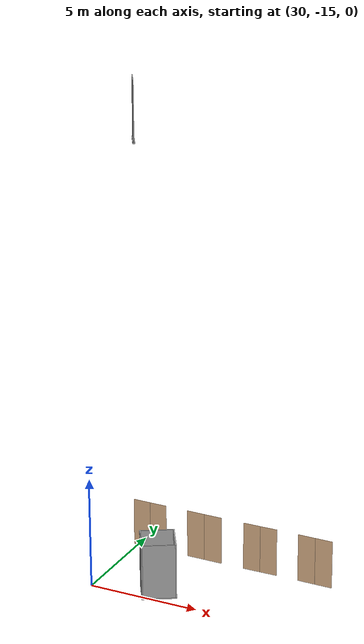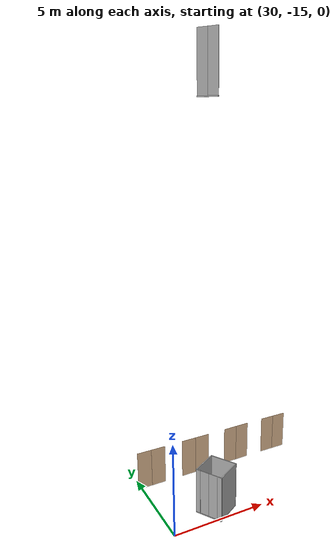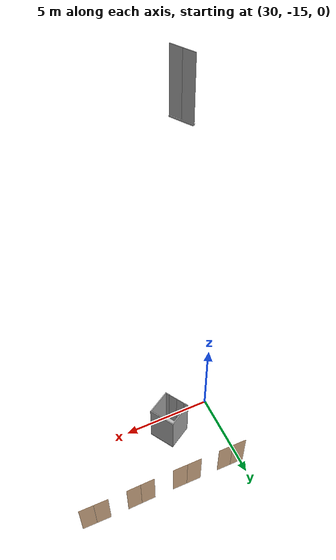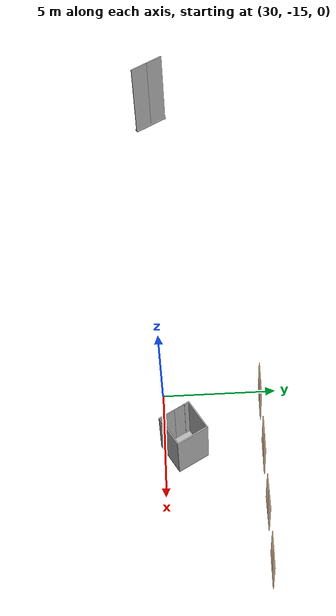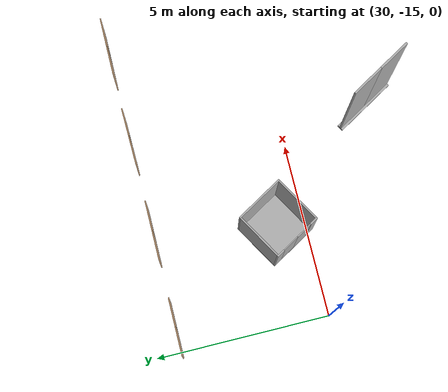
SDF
<sdf version="1.7">
 <world name="sim_world">
  <model name="part1_5">
   <pose>30.62381580076393 -10.732564106341501 0.0 0 0 3.1325331828849774</pose>
   <link name="right">
    <pose>0.4033982302911093 0 1.11 0 0 0</pose>
    <visual name="right_visual">
     <geometry><box><size>0.7967964605822186 0.03 2.2</size></box></geometry>
     <material>
      <ambient>0.5 0.25 0 0.6</ambient>
      <diffuse>0.5 0.25 0 0.6</diffuse>
      <pbr><metal><metalness>0.0</metalness></metal></pbr>
     </material>
    </visual>
    <collision name="right_collision">
     <geometry><box><size>0.7967964605822186 0.03 2.2</size></box></geometry>
     <surface><contact><collide_bitmask>0x02</collide_bitmask></contact></surface>
    </collision>
    <inertial>
     <mass>50.0</mass>
     <inertia><ixx>20.17041666666667</ixx><iyy>22.8120191649848</iyy><izz>2.64910249831813</izz></inertia>
    </inertial>
   </link>
   <joint name="right_joint" type="revolute">
    <parent>world</parent>
    <child>right</child>
    <axis><xyz>0 0 1</xyz><limit><lower>0</lower><upper>1.57</upper></limit></axis>
    <pose>0.4033982302911093 0 0 0 0 0</pose>
   </joint>
   <link name="left">
    <pose>-0.4033982302911093 0 1.11 0 0 0</pose>
    <visual name="left_visual">
     <geometry><box><size>0.7967964605822186 0.03 2.2</size></box></geometry>
     <material>
      <ambient>0.5 0.25 0 0.6</ambient>
      <diffuse>0.5 0.25 0 0.6</diffuse>
      <pbr><metal><metalness>0.0</metalness></metal></pbr>
     </material>
    </visual>
    <collision name="left_collision">
     <geometry><box><size>0.7967964605822186 0.03 2.2</size></box></geometry>
     <surface><contact><collide_bitmask>0x02</collide_bitmask></contact></surface>
    </collision>
    <inertial>
     <mass>50.0</mass>
     <inertia><ixx>20.17041666666667</ixx><iyy>22.8120191649848</iyy><izz>2.64910249831813</izz></inertia>
    </inertial>
   </link>
   <joint name="left_joint" type="revolute">
    <parent>world</parent>
    <child>left</child>
    <axis><xyz>0 0 1</xyz><limit><lower>-1.57</lower><upper>0</upper></limit></axis>
    <pose>-0.4033982302911093 0 0 0 0 0</pose>
   </joint>
   <plugin name="register_component" filename="libregister_component.so">
    <component name="Door">
     <v_max_door>0.5</v_max_door>
     <a_max_door>0.3</a_max_door>
     <a_nom_door>0.15</a_nom_door>
     <dx_min_door>0.01</dx_min_door>
     <f_max_door>500.0</f_max_door>
     <ros_interface>true</ros_interface>
     <door name="part1_5" type="DoubleSwingDoor" left_joint_name="left_joint" right_joint_name="right_joint"/>
    </component>
   </plugin>
  </model>
  <model name="part1_6">
   <pose>33.303837845168346 -10.745754091436014 0.0 0 0 3.134548012368475</pose>
   <link name="right">
    <pose>0.4174083984026789 0 1.11 0 0 0</pose>
    <visual name="right_visual">
     <geometry><box><size>0.8248167968053578 0.03 2.2</size></box></geometry>
     <material>
      <ambient>0.5 0.25 0 0.6</ambient>
      <diffuse>0.5 0.25 0 0.6</diffuse>
      <pbr><metal><metalness>0.0</metalness></metal></pbr>
     </material>
    </visual>
    <collision name="right_collision">
     <geometry><box><size>0.8248167968053578 0.03 2.2</size></box></geometry>
     <surface><contact><collide_bitmask>0x02</collide_bitmask></contact></surface>
    </collision>
    <inertial>
     <mass>50.0</mass>
     <inertia><ixx>20.17041666666667</ixx><iyy>23.001344784551048</iyy><izz>2.838428117884379</izz></inertia>
    </inertial>
   </link>
   <joint name="right_joint" type="revolute">
    <parent>world</parent>
    <child>right</child>
    <axis><xyz>0 0 1</xyz><limit><lower>0</lower><upper>1.57</upper></limit></axis>
    <pose>0.4174083984026789 0 0 0 0 0</pose>
   </joint>
   <link name="left">
    <pose>-0.4174083984026789 0 1.11 0 0 0</pose>
    <visual name="left_visual">
     <geometry><box><size>0.8248167968053578 0.03 2.2</size></box></geometry>
     <material>
      <ambient>0.5 0.25 0 0.6</ambient>
      <diffuse>0.5 0.25 0 0.6</diffuse>
      <pbr><metal><metalness>0.0</metalness></metal></pbr>
     </material>
    </visual>
    <collision name="left_collision">
     <geometry><box><size>0.8248167968053578 0.03 2.2</size></box></geometry>
     <surface><contact><collide_bitmask>0x02</collide_bitmask></contact></surface>
    </collision>
    <inertial>
     <mass>50.0</mass>
     <inertia><ixx>20.17041666666667</ixx><iyy>23.001344784551048</iyy><izz>2.838428117884379</izz></inertia>
    </inertial>
   </link>
   <joint name="left_joint" type="revolute">
    <parent>world</parent>
    <child>left</child>
    <axis><xyz>0 0 1</xyz><limit><lower>-1.57</lower><upper>0</upper></limit></axis>
    <pose>-0.4174083984026789 0 0 0 0 0</pose>
   </joint>
   <plugin name="register_component" filename="libregister_component.so">
    <component name="Door">
     <v_max_door>0.5</v_max_door>
     <a_max_door>0.3</a_max_door>
     <a_nom_door>0.15</a_nom_door>
     <dx_min_door>0.01</dx_min_door>
     <f_max_door>500.0</f_max_door>
     <ros_interface>true</ros_interface>
     <door name="part1_6" type="DoubleSwingDoor" left_joint_name="left_joint" right_joint_name="right_joint"/>
    </component>
   </plugin>
  </model>
  <model name="part1_7">
   <pose>35.98657169916032 -10.742288109951325 0.0 0 0 -3.1297649534100933</pose>
   <link name="right">
    <pose>0.3951374930538005 0 1.11 0 0 0</pose>
    <visual name="right_visual">
     <geometry><box><size>0.780274986107601 0.03 2.2</size></box></geometry>
     <material>
      <ambient>0.5 0.25 0 0.6</ambient>
      <diffuse>0.5 0.25 0 0.6</diffuse>
      <pbr><metal><metalness>0.0</metalness></metal></pbr>
     </material>
    </visual>
    <collision name="right_collision">
     <geometry><box><size>0.780274986107601 0.03 2.2</size></box></geometry>
     <surface><contact><collide_bitmask>0x02</collide_bitmask></contact></surface>
    </collision>
    <inertial>
     <mass>50.0</mass>
     <inertia><ixx>20.17041666666667</ixx><iyy>22.70345439143841</iyy><izz>2.540537724771738</izz></inertia>
    </inertial>
   </link>
   <joint name="right_joint" type="revolute">
    <parent>world</parent>
    <child>right</child>
    <axis><xyz>0 0 1</xyz><limit><lower>0</lower><upper>1.57</upper></limit></axis>
    <pose>0.3951374930538005 0 0 0 0 0</pose>
   </joint>
   <link name="left">
    <pose>-0.3951374930538005 0 1.11 0 0 0</pose>
    <visual name="left_visual">
     <geometry><box><size>0.780274986107601 0.03 2.2</size></box></geometry>
     <material>
      <ambient>0.5 0.25 0 0.6</ambient>
      <diffuse>0.5 0.25 0 0.6</diffuse>
      <pbr><metal><metalness>0.0</metalness></metal></pbr>
     </material>
    </visual>
    <collision name="left_collision">
     <geometry><box><size>0.780274986107601 0.03 2.2</size></box></geometry>
     <surface><contact><collide_bitmask>0x02</collide_bitmask></contact></surface>
    </collision>
    <inertial>
     <mass>50.0</mass>
     <inertia><ixx>20.17041666666667</ixx><iyy>22.70345439143841</iyy><izz>2.540537724771738</izz></inertia>
    </inertial>
   </link>
   <joint name="left_joint" type="revolute">
    <parent>world</parent>
    <child>left</child>
    <axis><xyz>0 0 1</xyz><limit><lower>-1.57</lower><upper>0</upper></limit></axis>
    <pose>-0.3951374930538005 0 0 0 0 0</pose>
   </joint>
   <plugin name="register_component" filename="libregister_component.so">
    <component name="Door">
     <v_max_door>0.5</v_max_door>
     <a_max_door>0.3</a_max_door>
     <a_nom_door>0.15</a_nom_door>
     <dx_min_door>0.01</dx_min_door>
     <f_max_door>500.0</f_max_door>
     <ros_interface>true</ros_interface>
     <door name="part1_7" type="DoubleSwingDoor" left_joint_name="left_joint" right_joint_name="right_joint"/>
    </component>
   </plugin>
  </model>
  <model name="part1_8">
   <pose>38.57675903364792 -10.742207878898437 0.0 0 0 3.1300311442483824</pose>
   <link name="right">
    <pose>0.40076484747594776 0 1.11 0 0 0</pose>
    <visual name="right_visual">
     <geometry><box><size>0.7915296949518955 0.03 2.2</size></box></geometry>
     <material>
      <ambient>0.5 0.25 0 0.6</ambient>
      <diffuse>0.5 0.25 0 0.6</diffuse>
      <pbr><metal><metalness>0.0</metalness></metal></pbr>
     </material>
    </visual>
    <collision name="right_collision">
     <geometry><box><size>0.7915296949518955 0.03 2.2</size></box></geometry>
     <surface><contact><collide_bitmask>0x02</collide_bitmask></contact></surface>
    </collision>
    <inertial>
     <mass>50.0</mass>
     <inertia><ixx>20.17041666666667</ixx><iyy>22.777163574961005</iyy><izz>2.6142469082943367</izz></inertia>
    </inertial>
   </link>
   <joint name="right_joint" type="revolute">
    <parent>world</parent>
    <child>right</child>
    <axis><xyz>0 0 1</xyz><limit><lower>0</lower><upper>1.57</upper></limit></axis>
    <pose>0.40076484747594776 0 0 0 0 0</pose>
   </joint>
   <link name="left">
    <pose>-0.40076484747594776 0 1.11 0 0 0</pose>
    <visual name="left_visual">
     <geometry><box><size>0.7915296949518955 0.03 2.2</size></box></geometry>
     <material>
      <ambient>0.5 0.25 0 0.6</ambient>
      <diffuse>0.5 0.25 0 0.6</diffuse>
      <pbr><metal><metalness>0.0</metalness></metal></pbr>
     </material>
    </visual>
    <collision name="left_collision">
     <geometry><box><size>0.7915296949518955 0.03 2.2</size></box></geometry>
     <surface><contact><collide_bitmask>0x02</collide_bitmask></contact></surface>
    </collision>
    <inertial>
     <mass>50.0</mass>
     <inertia><ixx>20.17041666666667</ixx><iyy>22.777163574961005</iyy><izz>2.6142469082943367</izz></inertia>
    </inertial>
   </link>
   <joint name="left_joint" type="revolute">
    <parent>world</parent>
    <child>left</child>
    <axis><xyz>0 0 1</xyz><limit><lower>-1.57</lower><upper>0</upper></limit></axis>
    <pose>-0.40076484747594776 0 0 0 0 0</pose>
   </joint>
   <plugin name="register_component" filename="libregister_component.so">
    <component name="Door">
     <v_max_door>0.5</v_max_door>
     <a_max_door>0.3</a_max_door>
     <a_nom_door>0.15</a_nom_door>
     <dx_min_door>0.01</dx_min_door>
     <f_max_door>500.0</f_max_door>
     <ros_interface>true</ros_interface>
     <door name="part1_8" type="DoubleSwingDoor" left_joint_name="left_joint" right_joint_name="right_joint"/>
    </component>
   </plugin>
  </model>
  <model name="ShaftDoor_lift1_L4_lift1_doors">
   <pose>32.074992194929564 -14.53258134317333 20.0 0 0 2.1</pose>
   <link name="right_door">
    <pose>0.25 0 1.25 0 0 0</pose>
    <visual name="right_door_visual">
     <geometry><box><size>0.5 0.03 2.5</size></box></geometry>
     <material>
      <ambient>0.5 0.5 0.5 1</ambient>
      <diffuse>0.7 0.7 0.7 1</diffuse>
      <specular>0.6 0.6 0.6 1</specular>
      <emissive>0.1 0.1 0.1 1</emissive>
     </material>
    </visual>
    <collision name="right_door_collision">
     <geometry><box><size>0.5 0.03 2.5</size></box></geometry>
     <surface><contact><collide_bitmask>0x02</collide_bitmask></contact></surface>
    </collision>
   </link>
   <link name="left_door">
    <pose>-0.25 0 1.25 0 0 0</pose>
    <visual name="left_door_visual">
     <geometry><box><size>0.5 0.03 2.5</size></box></geometry>
     <material>
      <ambient>0.5 0.5 0.5 1</ambient>
      <diffuse>0.7 0.7 0.7 1</diffuse>
      <specular>0.6 0.6 0.6 1</specular>
      <emissive>0.1 0.1 0.1 1</emissive>
     </material>
    </visual>
    <collision name="left_door_collision">
     <geometry><box><size>0.5 0.03 2.5</size></box></geometry>
     <surface><contact><collide_bitmask>0x02</collide_bitmask></contact></surface>
    </collision>
   </link>
   <joint name="right_joint" type="prismatic">
    <parent>world</parent>
    <child>right_door</child>
    <axis><xyz>1 0 0</xyz><limit><lower>0</lower><upper>0.5</upper></limit></axis>
   </joint>
   <joint name="left_joint" type="prismatic">
    <parent>world</parent>
    <child>left_door</child>
    <axis><xyz>1 0 0</xyz><limit><lower>-0.5</lower><upper>0</upper></limit></axis>
   </joint>
   <link name="ramp">
    <pose>0 0 -0.025 0 0 0</pose>
    <visual name="ramp_visual">
     <geometry><box><size>1.0 0.1 0.05</size></box></geometry>
     <material>
      <ambient>0.5 0.5 0.5 1</ambient>
      <diffuse>0.7 0.7 0.7 1</diffuse>
      <specular>0.6 0.6 0.6 1</specular>
      <emissive>0.1 0.1 0.1 1</emissive>
     </material>
    </visual>
    <collision name="ramp_collision">
     <geometry><box><size>1.0 0.1 0.05</size></box></geometry>
     <surface><contact><collide_bitmask>0x02</collide_bitmask></contact></surface>
    </collision>
   </link>
   <joint name="ramp_joint" type="fixed"><parent>world</parent><child>ramp</child></joint>
   <plugin name="register_component" filename="libregister_component.so">
    <component name="Door">
     <v_max_door>0.3</v_max_door>
     <a_max_door>0.2</a_max_door>
     <a_nom_door>0.1</a_nom_door>
     <dx_min_door>0.0001</dx_min_door>
     <f_max_door>35.0</f_max_door>
     <door left_joint_name="left_joint" name="ShaftDoor_lift1_L4_lift1_doors" right_joint_name="right_joint" type="DoubleSlidingDoor"/>
    </component>
   </plugin>
  </model>
  <model name="lift1">
   <link name="platform">
    <inertial><mass>1200</mass><inertia><ixx>225.25</ixx><iyy>225.25</iyy><izz>450.0</izz></inertia></inertial>
    <visual name="floor_visual">
     <pose>0 0 -0.025 0 0 0</pose>
     <geometry><box><size>1.5 1.5 0.05</size></box></geometry>
     <material>
      <ambient>0.5 0.5 0.5 1</ambient>
      <diffuse>0.7 0.7 0.7 1</diffuse>
      <specular>0.6 0.6 0.6 1</specular>
      <emissive>0.1 0.1 0.1 1</emissive>
     </material>
    </visual>
    <collision name="floor_collision">
     <pose>0 0 -0.025 0 0 0</pose>
     <geometry><box><size>1.5 1.5 0.05</size></box></geometry>
     <surface><contact><collide_bitmask>0x01</collide_bitmask></contact></surface>
    </collision>
    <visual name="frontwall1_visual">
     <pose>-0.625 0.725 1.25 0 0 0</pose>
     <geometry><box><size>0.25 0.05 2.5</size></box></geometry>
     <material>
      <ambient>0.5 0.5 0.5 1</ambient>
      <diffuse>0.7 0.7 0.7 1</diffuse>
      <specular>0.6 0.6 0.6 1</specular>
      <emissive>0.1 0.1 0.1 1</emissive>
     </material>
    </visual>
    <collision name="frontwall1_collision">
     <pose>-0.625 0.725 1.25 0 0 0</pose>
     <geometry><box><size>0.25 0.05 2.5</size></box></geometry>
     <surface><contact><collide_bitmask>0x01</collide_bitmask></contact></surface>
    </collision>
    <visual name="frontwall2_visual">
     <pose>0.625 0.725 1.25 0 0 0</pose>
     <geometry><box><size>0.25 0.05 2.5</size></box></geometry>
     <material>
      <ambient>0.5 0.5 0.5 1</ambient>
      <diffuse>0.7 0.7 0.7 1</diffuse>
      <specular>0.6 0.6 0.6 1</specular>
      <emissive>0.1 0.1 0.1 1</emissive>
     </material>
    </visual>
    <collision name="frontwall2_collision">
     <pose>0.625 0.725 1.25 0 0 0</pose>
     <geometry><box><size>0.25 0.05 2.5</size></box></geometry>
     <surface><contact><collide_bitmask>0x01</collide_bitmask></contact></surface>
    </collision>
    <visual name="backwall1_visual">
     <pose>0.0 -0.725 1.25 0 0 0</pose>
     <geometry><box><size>1.5 0.05 2.5</size></box></geometry>
     <material>
      <ambient>0.5 0.5 0.5 1</ambient>
      <diffuse>0.7 0.7 0.7 1</diffuse>
      <specular>0.6 0.6 0.6 1</specular>
      <emissive>0.1 0.1 0.1 1</emissive>
     </material>
    </visual>
    <collision name="backwall1_collision">
     <pose>0.0 -0.725 1.25 0 0 0</pose>
     <geometry><box><size>1.5 0.05 2.5</size></box></geometry>
     <surface><contact><collide_bitmask>0x01</collide_bitmask></contact></surface>
    </collision>
    <visual name="leftwall1_visual">
     <pose>-0.725 0.0 1.25 0 0 1.5707963267948966</pose>
     <geometry><box><size>1.4 0.05 2.5</size></box></geometry>
     <material>
      <ambient>0.5 0.5 0.5 1</ambient>
      <diffuse>0.7 0.7 0.7 1</diffuse>
      <specular>0.6 0.6 0.6 1</specular>
      <emissive>0.1 0.1 0.1 1</emissive>
     </material>
    </visual>
    <collision name="leftwall1_collision">
     <pose>-0.725 0.0 1.25 0 0 1.5707963267948966</pose>
     <geometry><box><size>1.4 0.05 2.5</size></box></geometry>
     <surface><contact><collide_bitmask>0x01</collide_bitmask></contact></surface>
    </collision>
    <visual name="rightwall1_visual">
     <pose>0.725 0.0 1.25 0 0 1.5707963267948966</pose>
     <geometry><box><size>1.4 0.05 2.5</size></box></geometry>
     <material>
      <ambient>0.5 0.5 0.5 1</ambient>
      <diffuse>0.7 0.7 0.7 1</diffuse>
      <specular>0.6 0.6 0.6 1</specular>
      <emissive>0.1 0.1 0.1 1</emissive>
     </material>
    </visual>
    <collision name="rightwall1_collision">
     <pose>0.725 0.0 1.25 0 0 1.5707963267948966</pose>
     <geometry><box><size>1.4 0.05 2.5</size></box></geometry>
     <surface><contact><collide_bitmask>0x01</collide_bitmask></contact></surface>
    </collision>
   </link>
   <joint name="cabin_joint" type="prismatic">
    <parent>world</parent>
    <child>platform</child>
    <axis><xyz>0 0 1</xyz></axis>
   </joint>
   <model name="CabinDoor_lift1_lift1_doors">
    <pose>0.0 0.725 0 0 0 0.0</pose>
    <link name="right_door">
     <pose>0.25 0 1.25 0 0 0</pose>
     <visual name="right_door_visual">
      <geometry><box><size>0.5 0.03 2.5</size></box></geometry>
      <material>
       <ambient>0.5 0.5 0.5 1</ambient>
       <diffuse>0.7 0.7 0.7 1</diffuse>
       <specular>0.6 0.6 0.6 1</specular>
       <emissive>0.1 0.1 0.1 1</emissive>
      </material>
     </visual>
     <collision name="right_door_collision">
      <geometry><box><size>0.5 0.03 2.5</size></box></geometry>
      <surface><contact><collide_bitmask>0x02</collide_bitmask></contact></surface>
     </collision>
    </link>
    <link name="left_door">
     <pose>-0.25 0 1.25 0 0 0</pose>
     <visual name="left_door_visual">
      <geometry><box><size>0.5 0.03 2.5</size></box></geometry>
      <material>
       <ambient>0.5 0.5 0.5 1</ambient>
       <diffuse>0.7 0.7 0.7 1</diffuse>
       <specular>0.6 0.6 0.6 1</specular>
       <emissive>0.1 0.1 0.1 1</emissive>
      </material>
     </visual>
     <collision name="left_door_collision">
      <geometry><box><size>0.5 0.03 2.5</size></box></geometry>
      <surface><contact><collide_bitmask>0x02</collide_bitmask></contact></surface>
     </collision>
    </link>
    <plugin name="register_component" filename="libregister_component.so">
     <component name="Door">
      <v_max_door>0.3</v_max_door>
      <a_max_door>0.2</a_max_door>
      <a_nom_door>0.1</a_nom_door>
      <dx_min_door>0.0001</dx_min_door>
      <f_max_door>35.0</f_max_door>
      <door left_joint_name="CabinDoor_lift1_lift1_doors_left_joint" name="CabinDoor_lift1_lift1_doors" right_joint_name="CabinDoor_lift1_lift1_doors_right_joint" type="DoubleSlidingDoor"/>
     </component>
    </plugin>
   </model>
   <joint name="CabinDoor_lift1_lift1_doors_right_joint" type="prismatic">
    <parent>platform</parent>
    <child>CabinDoor_lift1_lift1_doors::right_door</child>
    <axis><xyz>1 0 0</xyz><limit><lower>0</lower><upper>0.5</upper></limit></axis>
   </joint>
   <joint name="CabinDoor_lift1_lift1_doors_left_joint" type="prismatic">
    <parent>platform</parent>
    <child>CabinDoor_lift1_lift1_doors::left_door</child>
    <axis><xyz>1 0 0</xyz><limit><lower>-0.5</lower><upper>0</upper></limit></axis>
   </joint>
   <plugin name="register_component" filename="libregister_component.so">
    <component name="Lift">
     <lift_name>lift1</lift_name>
     <floor name="L2_entrada" elevation="0.0">
      <door_pair cabin_door="CabinDoor_lift1_lift1_doors" shaft_door="ShaftDoor_lift1_L2_entrada_lift1_doors"/>
     </floor>
     <floor name="L3" elevation="10.0">
      <door_pair cabin_door="CabinDoor_lift1_lift1_doors" shaft_door="ShaftDoor_lift1_L3_lift1_doors"/>
     </floor>
     <floor name="L4" elevation="20.0">
      <door_pair cabin_door="CabinDoor_lift1_lift1_doors" shaft_door="ShaftDoor_lift1_L4_lift1_doors"/>
     </floor>
     <initial_floor>L2_entrada</initial_floor>
     <v_max_cabin>2.0</v_max_cabin>
     <a_max_cabin>1.2</a_max_cabin>
     <a_nom_cabin>1.0</a_nom_cabin>
     <dx_min_cabin>0.001</dx_min_cabin>
     <f_max_cabin>25323.0</f_max_cabin>
     <cabin_joint_name>cabin_joint</cabin_joint_name>
    </component>
   </plugin>
   <pose>32.765559688248665 -14.128704459493443 0 0 0 2.1</pose>
  </model>
 </world>
</sdf>
